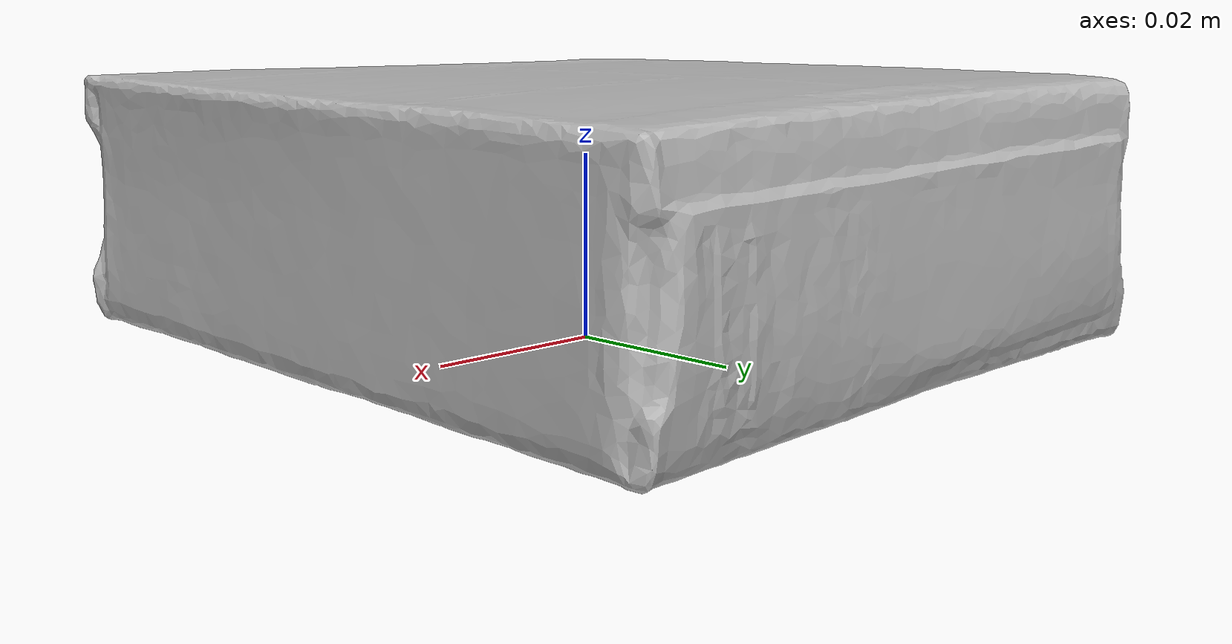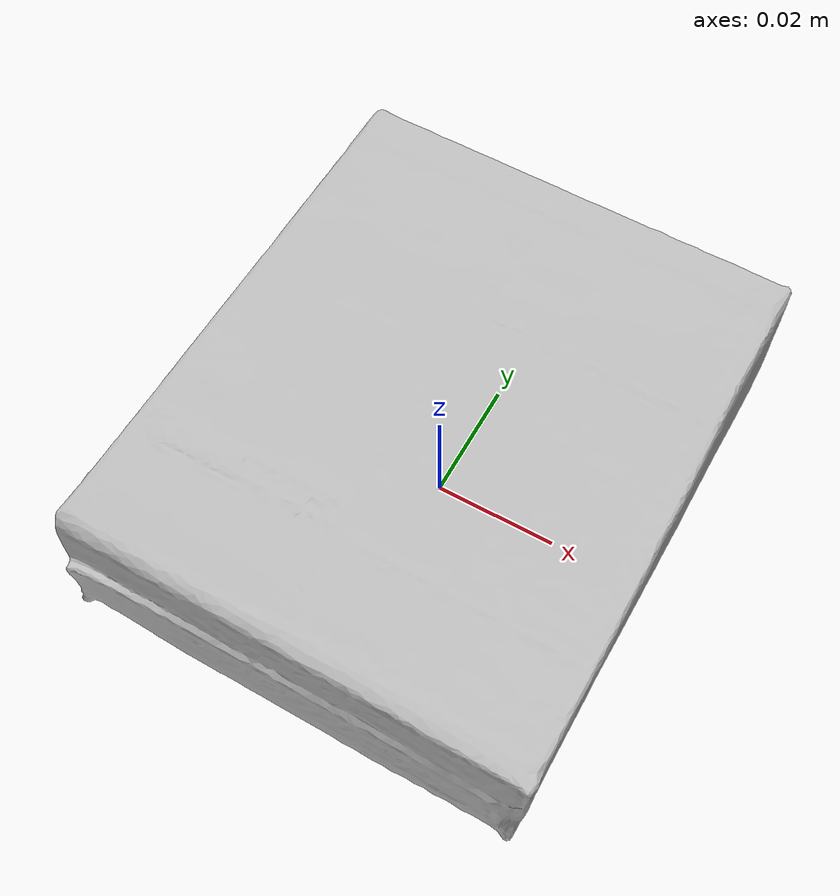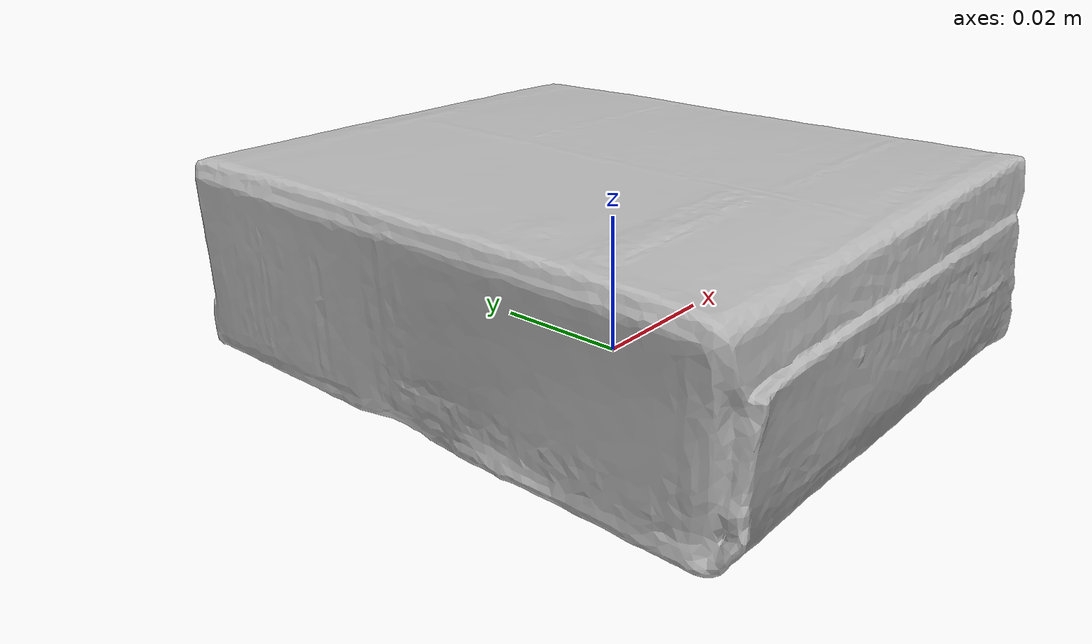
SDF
<?xml version="1.0"?>
<sdf version="1.6">
  <model name="gelatin_box">
    <link name="link">
      <inertial>
        <mass>0.097</mass>
        <inertia>
          <ixx>0.000064739</ixx>
          <ixy>0.0</ixy>
          <ixz>0.0</ixz>
          <iyy>0.000049413</iyy>
          <iyz>0.0</iyz>
          <izz>0.000101478</izz>
        </inertia>
        <pose>0 0 0.014 0 0 0</pose>
      </inertial>
      <collision name="collision">
        <pose>0 0 0.014 0 0 0</pose>
        <geometry>
          <box>
            <size>0.073 0.085 0.028</size>
          </box>
        </geometry>
      </collision>
      <visual name="visual">
        <!--
          DAE 的厚度轴是 X，而 collision 的厚度轴是 Z。先绕 Y
          轴旋转 90° 使三边对应，再对齐两者包围盒中心。
        -->
        <pose>-0.036801976 -0.001813649 0.012466166 0 1.570796327 0</pose>
        <geometry>
          <mesh>
            <uri>model://gelatin_box/meshes/textured.dae</uri>
          </mesh>
        </geometry>
      </visual>
    </link>
  </model>
</sdf>
